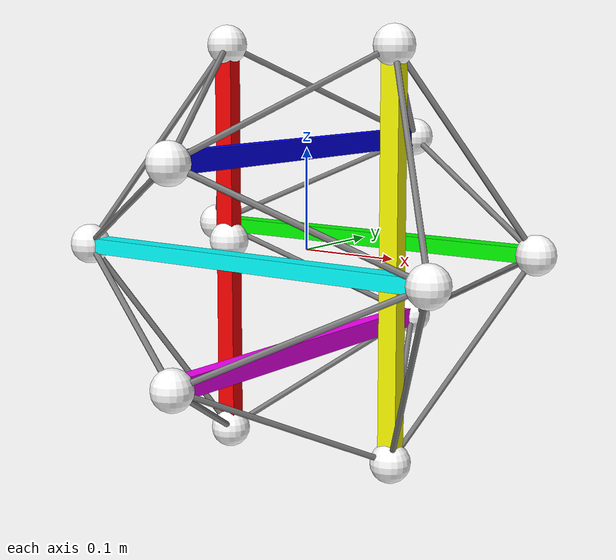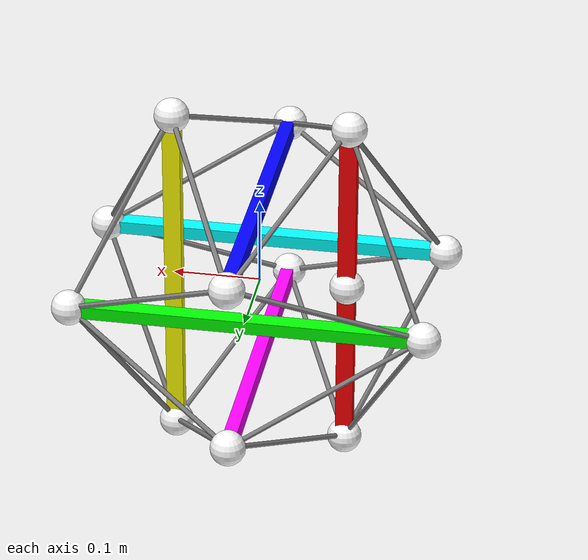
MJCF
<mujoco model="tensegrity">
  <option timestep="0.002"/>
  <default>
    <site size="0.02" rgba="1 1 1 1"/>
    <default class="tendon_actuator">
      <general ctrllimited="true" ctrlrange="-6.0 0" dyntype="filter" dynprm="0.02"/> <!-- for real2sim -->
    </default>
    <default class="tendon_spatial">
      <tendon damping="5" stiffness="70" frictionloss="0.5"/>
    </default>
  </default>
  <worldbody>
    <light pos="0 1 1" dir="0 -1 -1" diffuse="1 1 1"/>

      <!-- link -->
    <body name="link1" pos="-0.1 0 0">
      <geom name="link1" type="box" size="0.01 0.0075 0.2" mass="0.1" rgba="1 0 0 1" pos="0 0 0"/>
      <joint name="link1" type="free"/>
      <site name="link1_top" pos="0 0.00 0.2"/>
      <site name="link1_bottom" pos="0 0.00 -0.2"/>
      <site name="imu" pos="0.0 0 0"/>
    </body>

    <body name="link2" pos="0.1 0 0">
      <geom name="link2" type="box" size="0.01 0.0075 0.2" mass="0.1" rgba="1 1 0 1" pos="0 0 0"/>
      <joint name="link2" type="free"/>
      <site name="link2_top" pos="0.0 0.00 0.2"/>
      <site name="link2_bottom" pos="0.0 0.00 -0.2"/>
    </body>

    <body name="link3" pos="0 0.1 0">
      <geom name="link3" type="box" size="0.2 0.01 0.0075" mass="0.1" rgba="0 1 0 1" pos="0 0 0"/>
      <joint name="link3" type="free"/>
      <site name="link3_top" pos="0.2 0.0 0.0"/>
      <site name="link3_bottom" pos="-0.2 0.0 0.0"/>
    </body>

    <body name="link4" pos="0 -0.1 0">
      <geom name="link4" type="box" size="0.2 0.01 0.0075" mass="0.1" rgba="0 1 1 1" pos="0 0 0"/>
      <joint name="link4" type="free"/>
      <site name="link4_top" pos="0.2 0.0 0.0"/>
      <site name="link4_bottom" pos="-0.2 0.0 0.0"/>
    </body>

    <body name="link5" pos="0 0 0.1">
      <geom name="link5" type="box" size="0.0075 0.2 0.01" mass="0.1" rgba="0 0 1 1" pos="0 0 0"/>
      <joint name="link5" type="free"/>
      <site name="link5_top" pos="0.0 0.2 0.0"/>
      <site name="link5_bottom" pos="0.0 -0.2 0.0"/>
    </body>

    <body name="link6" pos="0 0 -0.1">
      <geom name="link6" type="box" size="0.0075 0.2 0.01" mass="0.1" rgba="1 0 1 1" pos="0 0 0"/>
      <joint name="link6" type="free"/>
      <site name="link6_top" pos="0.0 0.2 0.0"/>
      <site name="link6_bottom" pos="0.0 -0.2 0.0"/>
    </body>

  </worldbody>

  <tendon>
    <!-- link1 -->
    <spatial name="link1t_3b" class="tendon_spatial">
      <site site="link1_top"/>
      <site site="link3_bottom"/>
    </spatial>
    <spatial name="link1t_4b" class="tendon_spatial">
      <site site="link1_top"/>
      <site site="link4_bottom"/>
    </spatial>
    <spatial name="link1b_3b" class="tendon_spatial">
      <site site="link1_bottom"/>
      <site site="link3_bottom"/>
    </spatial>
    <spatial name="link1b_4b" class="tendon_spatial">
      <site site="link1_bottom"/>
      <site site="link4_bottom"/>
    </spatial>
    <spatial name="link1b_6t" class="tendon_spatial">
      <site site="link1_bottom"/>
      <site site="link6_top"/>
    </spatial>
    <spatial name="link1b_6b" class="tendon_spatial">
      <site site="link1_bottom"/>
      <site site="link6_bottom"/>
    </spatial>
    <spatial name="link1t_5t" class="tendon_spatial">
      <site site="link1_top"/>
      <site site="link5_top"/>
    </spatial>
    <spatial name="link1t_5b" class="tendon_spatial">
      <site site="link1_top"/>
      <site site="link5_bottom"/>
    </spatial>

    <!-- link2 -->
    <spatial name="link2t_3t" class="tendon_spatial">
      <site site="link2_top"/>
      <site site="link3_top"/>
    </spatial>
    <spatial name="link2t_4t" class="tendon_spatial">
      <site site="link2_top"/>
      <site site="link4_top"/>
    </spatial>
    <spatial name="link2b_3t" class="tendon_spatial">
      <site site="link2_bottom"/>
      <site site="link3_top"/>
    </spatial>
    <spatial name="link2b_4t" class="tendon_spatial">
      <site site="link2_bottom"/>
      <site site="link4_top"/>
    </spatial>
    <spatial name="link2b_6t" class="tendon_spatial">
      <site site="link2_bottom"/>
      <site site="link6_top"/>
    </spatial>
    <spatial name="link2b_6b" class="tendon_spatial">
      <site site="link2_bottom"/>
      <site site="link6_bottom"/>
    </spatial>
    <spatial name="link2t_5t" class="tendon_spatial">
      <site site="link2_top"/>
      <site site="link5_top"/>
    </spatial>
    <spatial name="link2t_5b" class="tendon_spatial">
      <site site="link2_top"/>
      <site site="link5_bottom"/>
    </spatial>

    <!-- link3 -->
    <spatial name="link3t_5t" class="tendon_spatial">
      <site site="link3_top"/>
      <site site="link5_top"/>
    </spatial>
    <spatial name="link3b_5t" class="tendon_spatial">
      <site site="link3_bottom"/>
      <site site="link5_top"/>
    </spatial>
    <spatial name="link3t_6t" class="tendon_spatial">
      <site site="link3_top"/>
      <site site="link6_top"/>
    </spatial>
    <spatial name="link3b_6t" class="tendon_spatial">
      <site site="link3_bottom"/>
      <site site="link6_top"/>
    </spatial>

    <!-- link4 -->
    <spatial name="link4t_5b" class="tendon_spatial">
      <site site="link4_top"/>
      <site site="link5_bottom"/>
    </spatial>
    <spatial name="link4b_5b" class="tendon_spatial">
      <site site="link4_bottom"/>
      <site site="link5_bottom"/>
    </spatial>
    <spatial name="link4t_6b" class="tendon_spatial">
      <site site="link4_top"/>
      <site site="link6_bottom"/>
    </spatial>
    <spatial name="link4b_6b" class="tendon_spatial">
      <site site="link4_bottom"/>
      <site site="link6_bottom"/>
    </spatial>
  </tendon>

  <actuator>
    <!-- tention-controlled actuators-->
    <position name="link1t_3b" tendon="link1t_3b" kp="3" class="tendon_actuator"/>
    <position name="link1b_3b" tendon="link1b_3b" kp="3" class="tendon_actuator"/>
    <position name="link1b_6t" tendon="link1b_6t" kp="3" class="tendon_actuator"/>
    <position name="link1t_5t" tendon="link1t_5t" kp="3" class="tendon_actuator"/>
    <position name="link2t_3t" tendon="link2t_3t" kp="3" class="tendon_actuator"/>
    <position name="link2b_3t" tendon="link2b_3t" kp="3" class="tendon_actuator"/>
    <position name="link2b_6t" tendon="link2b_6t" kp="3" class="tendon_actuator"/>
    <position name="link2t_5t" tendon="link2t_5t" kp="3" class="tendon_actuator"/>
    <position name="link3t_5t" tendon="link3t_5t" kp="3" class="tendon_actuator"/>
    <position name="link3t_6t" tendon="link3t_6t" kp="3" class="tendon_actuator"/>
    <position name="link4t_5b" tendon="link4t_5b" kp="3" class="tendon_actuator"/>
    <position name="link4b_6b" tendon="link4b_6b" kp="3" class="tendon_actuator"/>
  </actuator>

  <sensor>
      <!--touch sensor-->
    <touch name="touch_1t" site="link1_top"/>
    <touch name="touch_2t" site="link2_top"/>
    <touch name="touch_3t" site="link3_top"/>
    <touch name="touch_4t" site="link4_top"/>
    <touch name="touch_5t" site="link5_top"/>
    <touch name="touch_6t" site="link6_top"/>
    <touch name="touch_1b" site="link1_bottom"/>
    <touch name="touch_2b" site="link2_bottom"/>
    <touch name="touch_3b" site="link3_bottom"/>
    <touch name="touch_4b" site="link4_bottom"/>
    <touch name="touch_5b" site="link5_bottom"/>
    <touch name="touch_6b" site="link6_bottom"/>
  </sensor>

</mujoco>
